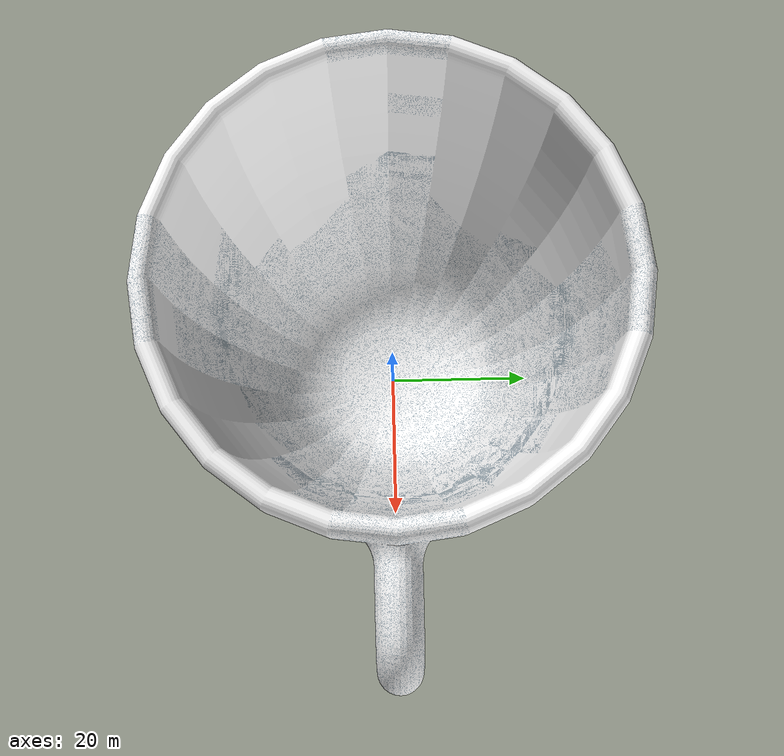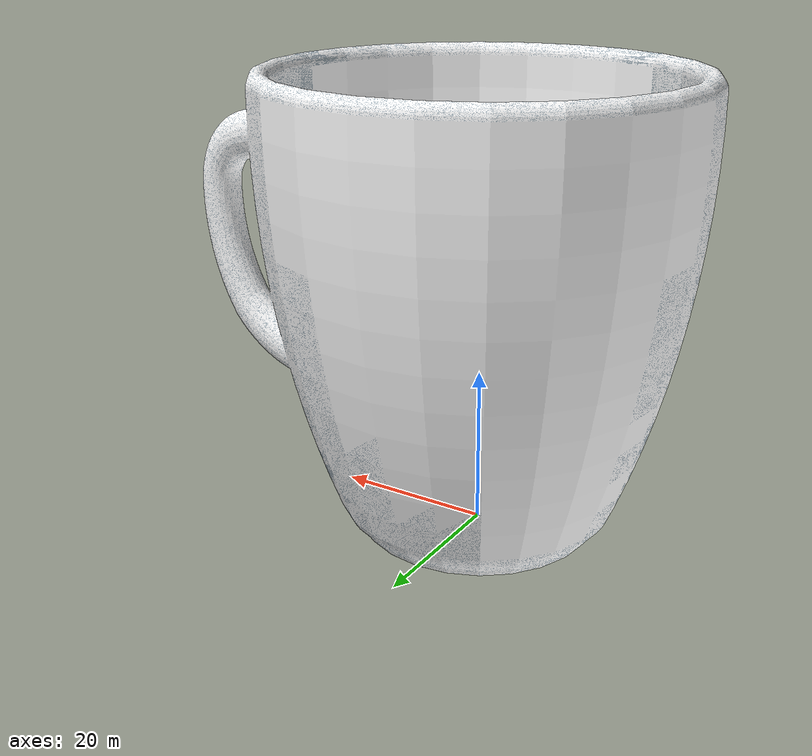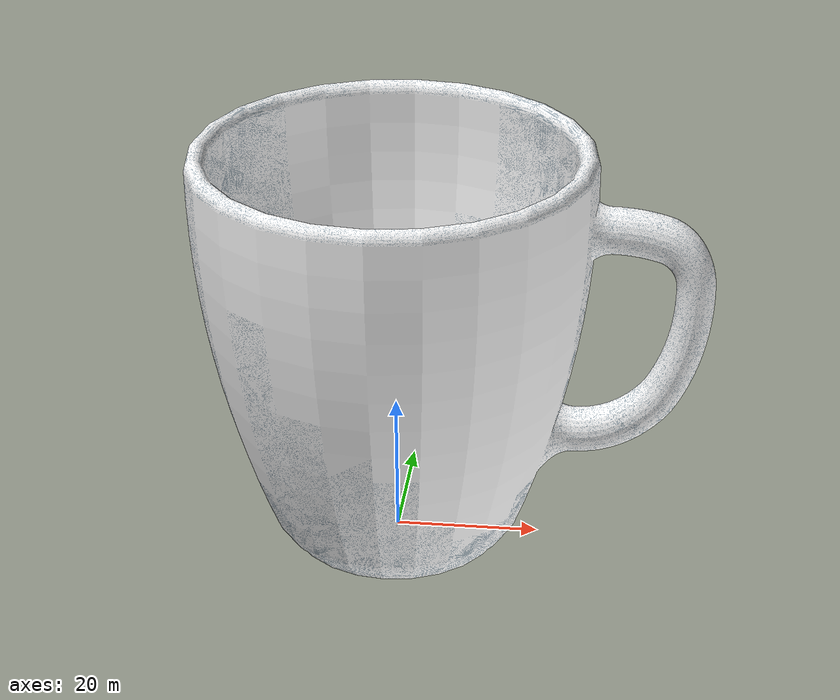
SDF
<?xml version="1.0"?>
<sdf version="1.4">
  <model name="cup">
    <static>false</static>
    <link name="link">
      <inertial>
        <mass>0.390</mass>
        <inertia>
          <ixx>0.00058</ixx>
          <ixy>0</ixy>
          <ixz>0</ixz>
          <iyy>0.00058</iyy>
          <iyz>0</iyz>
          <izz>0.00019</izz>
        </inertia>
      </inertial>
      <collision name="collision">
	<pose>0 0 0.05 0 0 0</pose>
        <geometry>
          <cylinder>
            <radius>0.04</radius>
            <length>0.10</length>
          </cylinder>
        </geometry>
      </collision>
      <visual name="visual">
        <geometry>
          <mesh>
            <uri>model://cup/meshes/cup.dae</uri>
	    <scale>0.8 0.8 1</scale>
          </mesh>
        </geometry>

      </visual>
    </link>
  </model>
</sdf>
